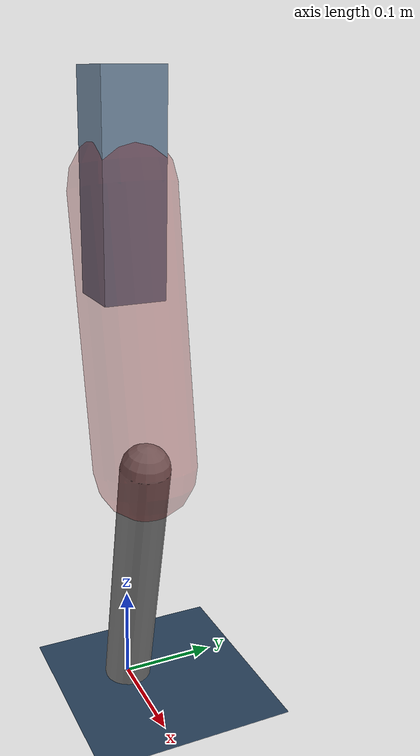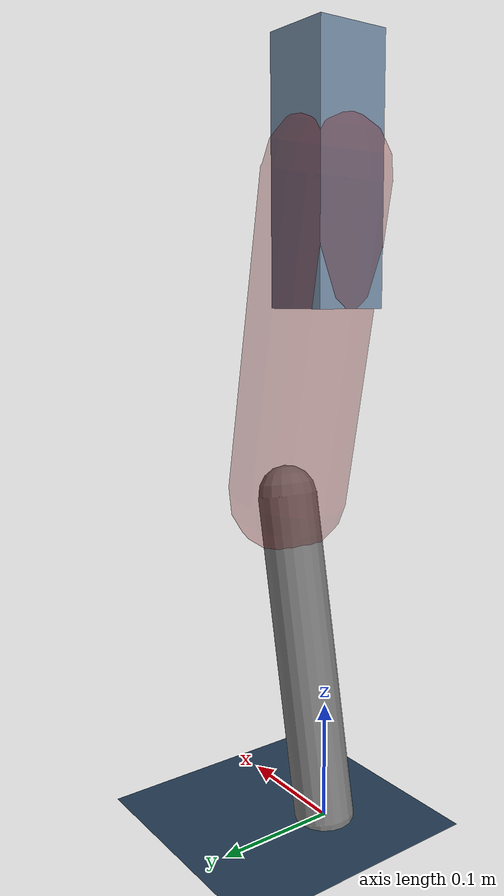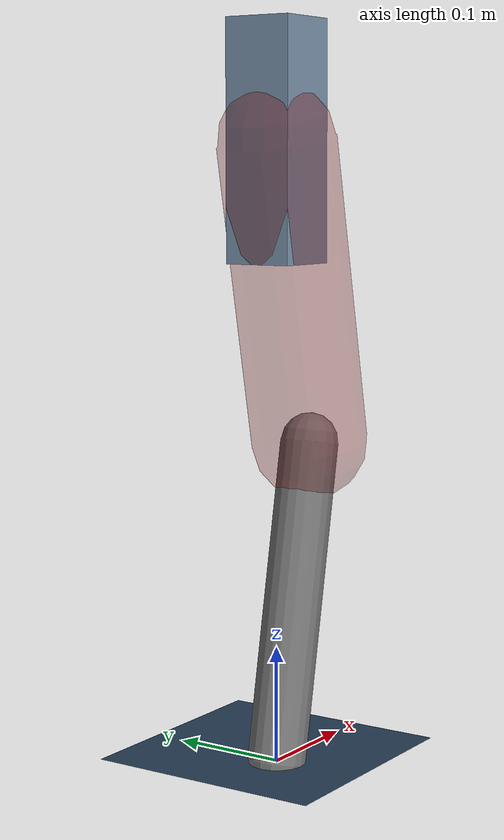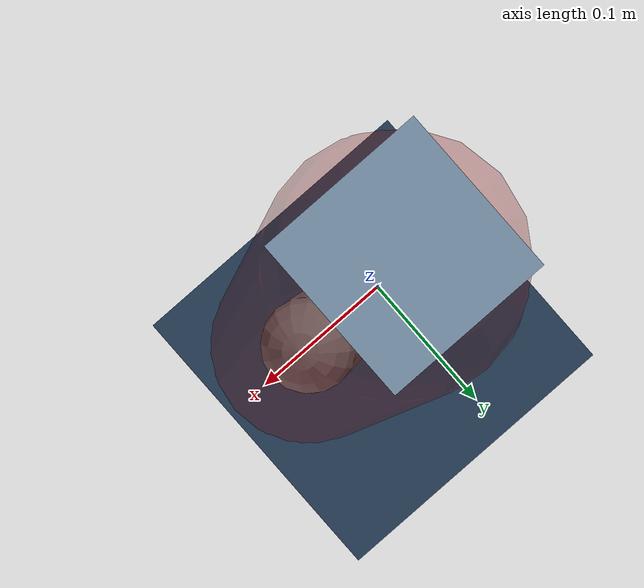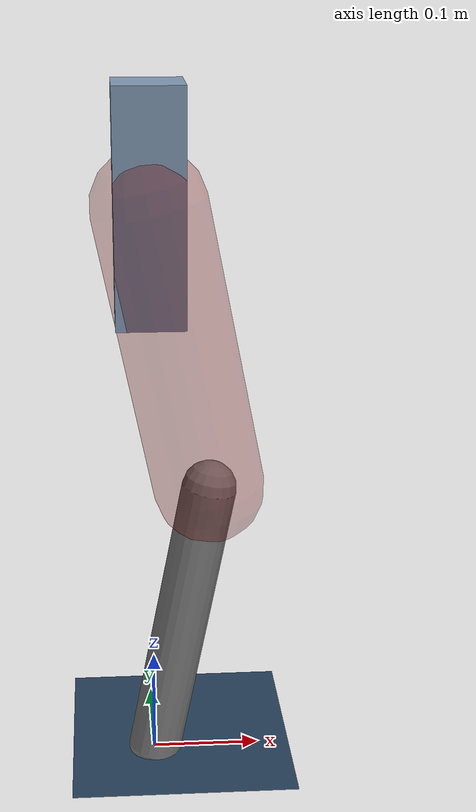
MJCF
<mujoco model="Hopper2D">
	<compiler inertiafromgeom="true" angle="radian" />
	<option timestep="0.001" integrator="implicit" cone="elliptic" solver="Newton" tolerance="1e-10" />

	<default>
		<geom contype="1" conaffinity="1" condim="3" friction="2 0.005 0.0001" solref="0.005 1" />
		<joint limited="true" damping="0.1" />
	</default>

	<asset>
		<texture name="skybox" type="skybox" builtin="gradient" rgb1=".4 .6 .8" rgb2="0 0 0" width="800" height="800" />
		<texture name="grid" type="2d" builtin="checker" rgb1=".1 .2 .3" rgb2=".2 .3 .4" width="300" height="300" mark="edge" markrgb=".2 .3 .4" />
		<material name="ground" texture="grid" texrepeat="1 1" texuniform="true" reflectance="0.1" />
		<material name="leg" rgba="0.5 0.6 0.7 1" />
	</asset>

	<worldbody>

		<geom name="floor" type="plane" size="5 5 0.25" material="ground" />

		<light directional="false" diffuse="0.8 0.8 0.8" specular="0.3 0.3 0.3" pos="0 0 2" dir="0 0 -1" />
		<light mode="targetbodycom" target="base" directional="false" diffuse="0.8 0.8 0.8" specular="0.3 0.3 0.3" pos="0 0 2" dir="0 0 -1" />

		<camera name="fixed" pos="0 -2 1" xyaxes="1 0 0 0 0 1" />
		<camera name="tracking" mode="trackcom" pos="0 -3 1" />

		<body name="root" pos="0 0 0.5269468786246048">
			<joint name="slide_x" type="slide" axis="1 0 0" range="-100 100" />
			<joint name="slide_z" type="slide" axis="0 0 1" range="0 10" />

			<body name="base" pos="0 0 0">
				<geom name="torso" type="box" size="0.03 0.03 0.1" mass="1.6829999999999998" material="leg" />

				<body name="link1" pos="0 0 0" euler="0 1.3716531232399207 0">
					<joint type="hinge" axis="0 -1 0" pos="0 0 0" name="hinge1" limited="true" range="-3.14 3.14" stiffness="0" damping="0.1" />
					<geom name="thigh" type="capsule" fromto="0 0 0 0.2605750066483886 0 0" size="0.05" rgba="0.5 0 0 0.3" mass="0.8838950172858103" />

					<body name="link2" pos="0.2605750066483886 0 0" euler="0 0.38676402394176956 0">
						<joint type="hinge" axis="0 -1 0" pos="0 0 0" name="hinge2" limited="true" range="-3.14 3.14" stiffness="0" damping="0.1" />
						<geom name="shank" type="capsule" fromto="0 0 0 0.27637187197621615 0 0" size="0.025" mass="0.4641974975809729" />

					</body>
				</body>
			</body>
		</body>
	</worldbody>

	<actuator>
		<motor name="torque1" joint="hinge1" ctrlrange="-34.87083191631954 34.87083191631954" ctrllimited="true" gear="1" />
		<motor name="torque2" joint="hinge2" ctrlrange="-20.72556915500594 20.72556915500594" ctrllimited="true" gear="1" />
	</actuator>
</mujoco>
